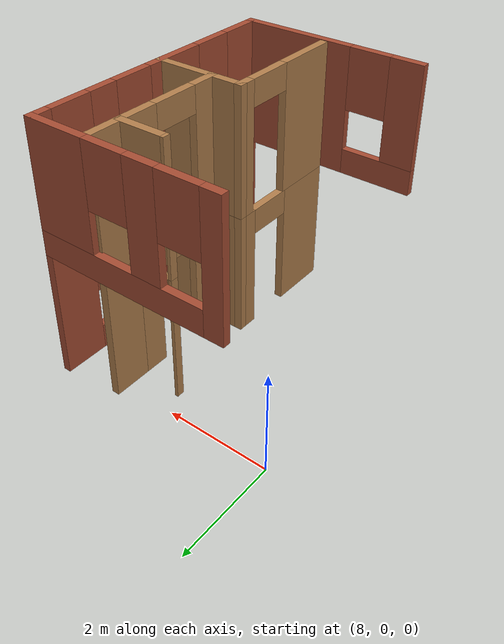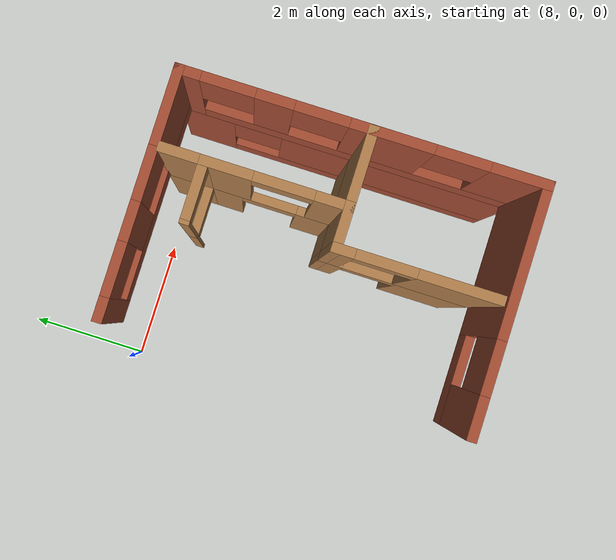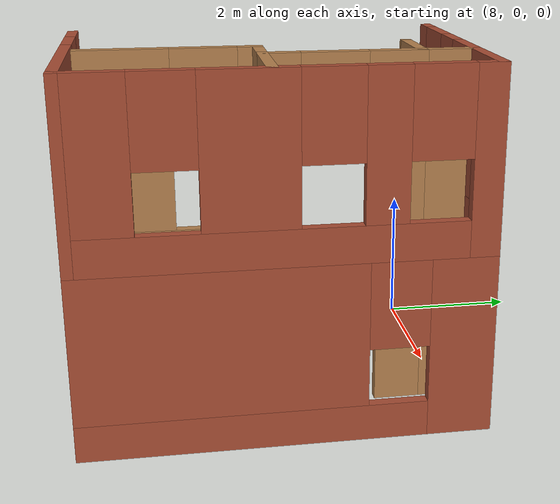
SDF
<sdf version="1.6">
 <model name="Building">
  <pose>-0.047811 -4.11763 0 0 -0 0</pose>
  <link name="Wall_27">
   <pose>12.2531 1.73144 0 0 -0 -1.5708</pose>
   <visual name="Wall_27_Visual_0">
    <pose>-2.30769 0 1.25 0 -0 0</pose>
    <geometry><box><size>0.884621 0.15 2.5</size></box></geometry>
    <material>
     <script><uri>file://media/materials/scripts/gazebo.material</uri><name>Gazebo/Bricks</name></script>
     <ambient>1 1 1 1</ambient>
    </material>
    <meta><layer>0</layer></meta>
   </visual>
   <collision name="Wall_27_Collision_0">
    <geometry><box><size>0.884621 0.15 2.5</size></box></geometry>
    <pose>-2.30769 0 1.25 0 -0 0</pose>
   </collision>
   <visual name="Wall_27_Visual_1">
    <pose>0.442311 0 0.25 0 -0 0</pose>
    <geometry><box><size>4.61538 0.15 0.5</size></box></geometry>
    <material>
     <script><uri>file://media/materials/scripts/gazebo.material</uri><name>Gazebo/Bricks</name></script>
     <ambient>1 1 1 1</ambient>
    </material>
    <meta><layer>0</layer></meta>
   </visual>
   <collision name="Wall_27_Collision_1">
    <geometry><box><size>4.61538 0.15 0.5</size></box></geometry>
    <pose>0.442311 0 0.25 0 -0 0</pose>
   </collision>
   <visual name="Wall_27_Visual_2">
    <pose>0.842311 0 1.5 0 -0 0</pose>
    <geometry><box><size>3.81538 0.15 2</size></box></geometry>
    <material>
     <script><uri>file://media/materials/scripts/gazebo.material</uri><name>Gazebo/Bricks</name></script>
     <ambient>1 1 1 1</ambient>
    </material>
    <meta><layer>0</layer></meta>
   </visual>
   <collision name="Wall_27_Collision_2">
    <geometry><box><size>3.81538 0.15 2</size></box></geometry>
    <pose>0.842311 0 1.5 0 -0 0</pose>
   </collision>
   <visual name="Wall_27_Visual_3">
    <pose>-1.46538 0 1.9 0 -0 0</pose>
    <geometry><box><size>0.8 0.15 1.2</size></box></geometry>
    <material>
     <script><uri>file://media/materials/scripts/gazebo.material</uri><name>Gazebo/Bricks</name></script>
     <ambient>1 1 1 1</ambient>
    </material>
    <meta><layer>0</layer></meta>
   </visual>
   <collision name="Wall_27_Collision_3">
    <geometry><box><size>0.8 0.15 1.2</size></box></geometry>
    <pose>-1.46538 0 1.9 0 -0 0</pose>
   </collision>
  </link>
  <link name="Wall_35">
   <pose>10.7203 3.68256 0 0 -0 0</pose>
   <visual name="Wall_35_Visual_0">
    <pose>-0.467759 0 1.25 0 -0 0</pose>
    <geometry><box><size>0.064482 0.15 2.5</size></box></geometry>
    <material>
     <script><uri>file://media/materials/scripts/gazebo.material</uri><name>Gazebo/Wood</name></script>
     <ambient>1 1 1 1</ambient>
    </material>
    <meta><layer>0</layer></meta>
   </visual>
   <collision name="Wall_35_Collision_0">
    <geometry><box><size>0.064482 0.15 2.5</size></box></geometry>
    <pose>-0.467759 0 1.25 0 -0 0</pose>
   </collision>
   <visual name="Wall_35_Visual_1">
    <pose>0.482241 0 1.25 0 -0 0</pose>
    <geometry><box><size>0.035518 0.15 2.5</size></box></geometry>
    <material>
     <script><uri>file://media/materials/scripts/gazebo.material</uri><name>Gazebo/Wood</name></script>
     <ambient>1 1 1 1</ambient>
    </material>
    <meta><layer>0</layer></meta>
   </visual>
   <collision name="Wall_35_Collision_1">
    <geometry><box><size>0.035518 0.15 2.5</size></box></geometry>
    <pose>0.482241 0 1.25 0 -0 0</pose>
   </collision>
   <visual name="Wall_35_Visual_2">
    <pose>0.014482 0 2.25 0 -0 0</pose>
    <geometry><box><size>0.9 0.15 0.5</size></box></geometry>
    <material>
     <script><uri>file://media/materials/scripts/gazebo.material</uri><name>Gazebo/Wood</name></script>
     <ambient>1 1 1 1</ambient>
    </material>
    <meta><layer>0</layer></meta>
   </visual>
   <collision name="Wall_35_Collision_2">
    <geometry><box><size>0.9 0.15 0.5</size></box></geometry>
    <pose>0.014482 0 2.25 0 -0 0</pose>
   </collision>
  </link>
  <link name="Wall_36">
   <collision name="Wall_36_Collision">
    <geometry><box><size>0.75 0.15 2.5</size></box></geometry>
    <pose>0 0 1.25 0 -0 0</pose>
   </collision>
   <visual name="Wall_36_Visual">
    <pose>0 0 1.25 0 -0 0</pose>
    <geometry><box><size>0.75 0.15 2.5</size></box></geometry>
    <material>
     <script><uri>file://media/materials/scripts/gazebo.material</uri><name>Gazebo/Wood</name></script>
     <ambient>1 1 1 1</ambient>
    </material>
    <meta><layer>0</layer></meta>
   </visual>
   <pose>11.1453 3.98257 0 0 -0 1.5708</pose>
  </link>
  <link name="Wall_38">
   <pose>11.1453 2.63257 0 0 -0 -1.5708</pose>
   <visual name="Wall_38_Visual_0">
    <pose>-0.803627 0 1.25 0 -0 0</pose>
    <geometry><box><size>0.642747 0.15 2.5</size></box></geometry>
    <material>
     <script><uri>file://media/materials/scripts/gazebo.material</uri><name>Gazebo/Wood</name></script>
     <ambient>1 1 1 1</ambient>
    </material>
    <meta><layer>0</layer></meta>
   </visual>
   <collision name="Wall_38_Collision_0">
    <geometry><box><size>0.642747 0.15 2.5</size></box></geometry>
    <pose>-0.803627 0 1.25 0 -0 0</pose>
   </collision>
   <visual name="Wall_38_Visual_1">
    <pose>0.771373 0 1.25 0 -0 0</pose>
    <geometry><box><size>0.707253 0.15 2.5</size></box></geometry>
    <material>
     <script><uri>file://media/materials/scripts/gazebo.material</uri><name>Gazebo/Wood</name></script>
     <ambient>1 1 1 1</ambient>
    </material>
    <meta><layer>0</layer></meta>
   </visual>
   <collision name="Wall_38_Collision_1">
    <geometry><box><size>0.707253 0.15 2.5</size></box></geometry>
    <pose>0.771373 0 1.25 0 -0 0</pose>
   </collision>
   <visual name="Wall_38_Visual_2">
    <pose>-0.032253 0 2.25 0 -0 0</pose>
    <geometry><box><size>0.9 0.15 0.5</size></box></geometry>
    <material>
     <script><uri>file://media/materials/scripts/gazebo.material</uri><name>Gazebo/Wood</name></script>
     <ambient>1 1 1 1</ambient>
    </material>
    <meta><layer>0</layer></meta>
   </visual>
   <collision name="Wall_38_Collision_2">
    <geometry><box><size>0.9 0.15 0.5</size></box></geometry>
    <pose>-0.032253 0 2.25 0 -0 0</pose>
   </collision>
  </link>
  <link name="Wall_39">
   <collision name="Wall_39_Collision">
    <geometry><box><size>1.25 0.15 2.5</size></box></geometry>
    <pose>0 0 1.25 0 -0 0</pose>
   </collision>
   <visual name="Wall_39_Visual">
    <pose>0 0 1.25 0 -0 0</pose>
    <geometry><box><size>1.25 0.15 2.5</size></box></geometry>
    <material>
     <script><uri>file://media/materials/scripts/gazebo.material</uri><name>Gazebo/Wood</name></script>
     <ambient>1 1 1 1</ambient>
    </material>
    <meta><layer>0</layer></meta>
   </visual>
   <pose>11.6953 1.58256 0 0 -0 0</pose>
  </link>
  <link name="Wall_41">
   <collision name="Wall_41_Collision">
    <geometry><box><size>0.75 0.15 2.5</size></box></geometry>
    <pose>0 0 1.25 0 -0 0</pose>
   </collision>
   <visual name="Wall_41_Visual">
    <pose>0 0 1.25 0 -0 0</pose>
    <geometry><box><size>0.75 0.15 2.5</size></box></geometry>
    <material>
     <script><uri>file://media/materials/scripts/gazebo.material</uri><name>Gazebo/Wood</name></script>
     <ambient>1 1 1 1</ambient>
    </material>
    <meta><layer>0</layer></meta>
   </visual>
   <pose>10.8453 1.58256 0 0 -0 3.14159</pose>
  </link>
  <link name="Wall_42">
   <pose>10.5453 0.407565 0 0 -0 -1.5708</pose>
   <visual name="Wall_42_Visual_0">
    <pose>-1.04184 0 1.25 0 -0 0</pose>
    <geometry><box><size>0.416326 0.15 2.5</size></box></geometry>
    <material>
     <script><uri>file://media/materials/scripts/gazebo.material</uri><name>Gazebo/Wood</name></script>
     <ambient>1 1 1 1</ambient>
    </material>
    <meta><layer>0</layer></meta>
   </visual>
   <collision name="Wall_42_Collision_0">
    <geometry><box><size>0.416326 0.15 2.5</size></box></geometry>
    <pose>-1.04184 0 1.25 0 -0 0</pose>
   </collision>
   <visual name="Wall_42_Visual_1">
    <pose>0.658163 0 1.25 0 -0 0</pose>
    <geometry><box><size>1.18367 0.15 2.5</size></box></geometry>
    <material>
     <script><uri>file://media/materials/scripts/gazebo.material</uri><name>Gazebo/Wood</name></script>
     <ambient>1 1 1 1</ambient>
    </material>
    <meta><layer>0</layer></meta>
   </visual>
   <collision name="Wall_42_Collision_1">
    <geometry><box><size>1.18367 0.15 2.5</size></box></geometry>
    <pose>0.658163 0 1.25 0 -0 0</pose>
   </collision>
   <visual name="Wall_42_Visual_2">
    <pose>-0.383674 0 2.25 0 -0 0</pose>
    <geometry><box><size>0.9 0.15 0.5</size></box></geometry>
    <material>
     <script><uri>file://media/materials/scripts/gazebo.material</uri><name>Gazebo/Wood</name></script>
     <ambient>1 1 1 1</ambient>
    </material>
    <meta><layer>0</layer></meta>
   </visual>
   <collision name="Wall_42_Collision_2">
    <geometry><box><size>0.9 0.15 0.5</size></box></geometry>
    <pose>-0.383674 0 2.25 0 -0 0</pose>
   </collision>
  </link>
  <link name="Wall_84">
   <pose>10.4531 4.40644 2.5 0 -0 0</pose>
   <visual name="Wall_84_Visual_0">
    <pose>-1.69054 0 1.25 0 -0 0</pose>
    <geometry><box><size>0.368918 0.15 2.5</size></box></geometry>
    <material>
     <script><uri>file://media/materials/scripts/gazebo.material</uri><name>Gazebo/Bricks</name></script>
     <ambient>1 1 1 1</ambient>
    </material>
    <meta><layer>1</layer></meta>
   </visual>
   <collision name="Wall_84_Collision_0">
    <geometry><box><size>0.368918 0.15 2.5</size></box></geometry>
    <pose>-1.69054 0 1.25 0 -0 0</pose>
   </collision>
   <visual name="Wall_84_Visual_1">
    <pose>0.184459 0 0.25 0 -0 0</pose>
    <geometry><box><size>3.38108 0.15 0.5</size></box></geometry>
    <material>
     <script><uri>file://media/materials/scripts/gazebo.material</uri><name>Gazebo/Bricks</name></script>
     <ambient>1 1 1 1</ambient>
    </material>
    <meta><layer>1</layer></meta>
   </visual>
   <collision name="Wall_84_Collision_1">
    <geometry><box><size>3.38108 0.15 0.5</size></box></geometry>
    <pose>0.184459 0 0.25 0 -0 0</pose>
   </collision>
   <visual name="Wall_84_Visual_2">
    <pose>-0.412164 0 1.5 0 -0 0</pose>
    <geometry><box><size>0.587836 0.15 2</size></box></geometry>
    <material>
     <script><uri>file://media/materials/scripts/gazebo.material</uri><name>Gazebo/Bricks</name></script>
     <ambient>1 1 1 1</ambient>
    </material>
    <meta><layer>1</layer></meta>
   </visual>
   <collision name="Wall_84_Collision_2">
    <geometry><box><size>0.587836 0.15 2</size></box></geometry>
    <pose>-0.412164 0 1.5 0 -0 0</pose>
   </collision>
   <visual name="Wall_84_Visual_3">
    <pose>1.27838 0 1.5 0 -0 0</pose>
    <geometry><box><size>1.19325 0.15 2</size></box></geometry>
    <material>
     <script><uri>file://media/materials/scripts/gazebo.material</uri><name>Gazebo/Bricks</name></script>
     <ambient>1 1 1 1</ambient>
    </material>
    <meta><layer>1</layer></meta>
   </visual>
   <collision name="Wall_84_Collision_3">
    <geometry><box><size>1.19325 0.15 2</size></box></geometry>
    <pose>1.27838 0 1.5 0 -0 0</pose>
   </collision>
   <visual name="Wall_84_Visual_4">
    <pose>-1.10608 0 1.9 0 -0 0</pose>
    <geometry><box><size>0.8 0.15 1.2</size></box></geometry>
    <material>
     <script><uri>file://media/materials/scripts/gazebo.material</uri><name>Gazebo/Bricks</name></script>
     <ambient>1 1 1 1</ambient>
    </material>
    <meta><layer>1</layer></meta>
   </visual>
   <collision name="Wall_84_Collision_4">
    <geometry><box><size>0.8 0.15 1.2</size></box></geometry>
    <pose>-1.10608 0 1.9 0 -0 0</pose>
   </collision>
   <visual name="Wall_84_Visual_5">
    <pose>0.281754 0 1.9 0 -0 0</pose>
    <geometry><box><size>0.8 0.15 1.2</size></box></geometry>
    <material>
     <script><uri>file://media/materials/scripts/gazebo.material</uri><name>Gazebo/Bricks</name></script>
     <ambient>1 1 1 1</ambient>
    </material>
    <meta><layer>1</layer></meta>
   </visual>
   <collision name="Wall_84_Collision_5">
    <geometry><box><size>0.8 0.15 1.2</size></box></geometry>
    <pose>0.281754 0 1.9 0 -0 0</pose>
   </collision>
  </link>
  <link name="Wall_85">
   <pose>12.2531 1.73144 2.5 0 -0 -1.5708</pose>
   <visual name="Wall_85_Visual_0">
    <pose>-2.55056 0 1.25 0 -0 0</pose>
    <geometry><box><size>0.398878 0.15 2.5</size></box></geometry>
    <material>
     <script><uri>file://media/materials/scripts/gazebo.material</uri><name>Gazebo/Bricks</name></script>
     <ambient>1 1 1 1</ambient>
    </material>
    <meta><layer>1</layer></meta>
   </visual>
   <collision name="Wall_85_Collision_0">
    <geometry><box><size>0.398878 0.15 2.5</size></box></geometry>
    <pose>-2.55056 0 1.25 0 -0 0</pose>
   </collision>
   <visual name="Wall_85_Visual_1">
    <pose>0.199439 0 0.25 0 -0 0</pose>
    <geometry><box><size>5.10112 0.15 0.5</size></box></geometry>
    <material>
     <script><uri>file://media/materials/scripts/gazebo.material</uri><name>Gazebo/Bricks</name></script>
     <ambient>1 1 1 1</ambient>
    </material>
    <meta><layer>1</layer></meta>
   </visual>
   <collision name="Wall_85_Collision_1">
    <geometry><box><size>5.10112 0.15 0.5</size></box></geometry>
    <pose>0.199439 0 0.25 0 -0 0</pose>
   </collision>
   <visual name="Wall_85_Visual_2">
    <pose>-1.26877 0 1.5 0 -0 0</pose>
    <geometry><box><size>0.564706 0.15 2</size></box></geometry>
    <material>
     <script><uri>file://media/materials/scripts/gazebo.material</uri><name>Gazebo/Bricks</name></script>
     <ambient>1 1 1 1</ambient>
    </material>
    <meta><layer>1</layer></meta>
   </visual>
   <collision name="Wall_85_Collision_2">
    <geometry><box><size>0.564706 0.15 2</size></box></geometry>
    <pose>-1.26877 0 1.5 0 -0 0</pose>
   </collision>
   <visual name="Wall_85_Visual_3">
    <pose>0.431331 0 1.5 0 -0 0</pose>
    <geometry><box><size>1.23549 0.15 2</size></box></geometry>
    <material>
     <script><uri>file://media/materials/scripts/gazebo.material</uri><name>Gazebo/Bricks</name></script>
     <ambient>1 1 1 1</ambient>
    </material>
    <meta><layer>1</layer></meta>
   </visual>
   <collision name="Wall_85_Collision_3">
    <geometry><box><size>1.23549 0.15 2</size></box></geometry>
    <pose>0.431331 0 1.5 0 -0 0</pose>
   </collision>
   <visual name="Wall_85_Visual_4">
    <pose>2.29954 0 1.5 0 -0 0</pose>
    <geometry><box><size>0.900922 0.15 2</size></box></geometry>
    <material>
     <script><uri>file://media/materials/scripts/gazebo.material</uri><name>Gazebo/Bricks</name></script>
     <ambient>1 1 1 1</ambient>
    </material>
    <meta><layer>1</layer></meta>
   </visual>
   <collision name="Wall_85_Collision_4">
    <geometry><box><size>0.900922 0.15 2</size></box></geometry>
    <pose>2.29954 0 1.5 0 -0 0</pose>
   </collision>
   <visual name="Wall_85_Visual_5">
    <pose>-1.95112 0 1.9 0 -0 0</pose>
    <geometry><box><size>0.8 0.15 1.2</size></box></geometry>
    <material>
     <script><uri>file://media/materials/scripts/gazebo.material</uri><name>Gazebo/Bricks</name></script>
     <ambient>1 1 1 1</ambient>
    </material>
    <meta><layer>1</layer></meta>
   </visual>
   <collision name="Wall_85_Collision_5">
    <geometry><box><size>0.8 0.15 1.2</size></box></geometry>
    <pose>-1.95112 0 1.9 0 -0 0</pose>
   </collision>
   <visual name="Wall_85_Visual_6">
    <pose>-0.586416 0 1.9 0 -0 0</pose>
    <geometry><box><size>0.8 0.15 1.2</size></box></geometry>
    <material>
     <script><uri>file://media/materials/scripts/gazebo.material</uri><name>Gazebo/Bricks</name></script>
     <ambient>1 1 1 1</ambient>
    </material>
    <meta><layer>1</layer></meta>
   </visual>
   <collision name="Wall_85_Collision_6">
    <geometry><box><size>0.8 0.15 1.2</size></box></geometry>
    <pose>-0.586416 0 1.9 0 -0 0</pose>
   </collision>
   <visual name="Wall_85_Visual_7">
    <pose>1.44908 0 1.9 0 -0 0</pose>
    <geometry><box><size>0.8 0.15 1.2</size></box></geometry>
    <material>
     <script><uri>file://media/materials/scripts/gazebo.material</uri><name>Gazebo/Bricks</name></script>
     <ambient>1 1 1 1</ambient>
    </material>
    <meta><layer>1</layer></meta>
   </visual>
   <collision name="Wall_85_Collision_7">
    <geometry><box><size>0.8 0.15 1.2</size></box></geometry>
    <pose>1.44908 0 1.9 0 -0 0</pose>
   </collision>
  </link>
  <link name="Wall_86">
   <pose>10.4531 -0.943557 2.5 0 -0 3.14159</pose>
   <visual name="Wall_86_Visual_0">
    <pose>-0.723242 0 1.25 0 -0 0</pose>
    <geometry><box><size>2.30351 0.15 2.5</size></box></geometry>
    <material>
     <script><uri>file://media/materials/scripts/gazebo.material</uri><name>Gazebo/Bricks</name></script>
     <ambient>1 1 1 1</ambient>
    </material>
    <meta><layer>1</layer></meta>
   </visual>
   <collision name="Wall_86_Collision_0">
    <geometry><box><size>2.30351 0.15 2.5</size></box></geometry>
    <pose>-0.723242 0 1.25 0 -0 0</pose>
   </collision>
   <visual name="Wall_86_Visual_1">
    <pose>1.15176 0 0.25 0 -0 0</pose>
    <geometry><box><size>1.44649 0.15 0.5</size></box></geometry>
    <material>
     <script><uri>file://media/materials/scripts/gazebo.material</uri><name>Gazebo/Bricks</name></script>
     <ambient>1 1 1 1</ambient>
    </material>
    <meta><layer>1</layer></meta>
   </visual>
   <collision name="Wall_86_Collision_1">
    <geometry><box><size>1.44649 0.15 0.5</size></box></geometry>
    <pose>1.15176 0 0.25 0 -0 0</pose>
   </collision>
   <visual name="Wall_86_Visual_2">
    <pose>1.55176 0 1.5 0 -0 0</pose>
    <geometry><box><size>0.646485 0.15 2</size></box></geometry>
    <material>
     <script><uri>file://media/materials/scripts/gazebo.material</uri><name>Gazebo/Bricks</name></script>
     <ambient>1 1 1 1</ambient>
    </material>
    <meta><layer>1</layer></meta>
   </visual>
   <collision name="Wall_86_Collision_2">
    <geometry><box><size>0.646485 0.15 2</size></box></geometry>
    <pose>1.55176 0 1.5 0 -0 0</pose>
   </collision>
   <visual name="Wall_86_Visual_3">
    <pose>0.828515 0 1.9 0 -0 0</pose>
    <geometry><box><size>0.8 0.15 1.2</size></box></geometry>
    <material>
     <script><uri>file://media/materials/scripts/gazebo.material</uri><name>Gazebo/Bricks</name></script>
     <ambient>1 1 1 1</ambient>
    </material>
    <meta><layer>1</layer></meta>
   </visual>
   <collision name="Wall_86_Collision_3">
    <geometry><box><size>0.8 0.15 1.2</size></box></geometry>
    <pose>0.828515 0 1.9 0 -0 0</pose>
   </collision>
  </link>
  <link name="Wall_89">
   <pose>10.7203 3.68256 2.5 0 -0 0</pose>
   <visual name="Wall_89_Visual_0">
    <pose>-0.467759 0 1.25 0 -0 0</pose>
    <geometry><box><size>0.064482 0.15 2.5</size></box></geometry>
    <material>
     <script><uri>file://media/materials/scripts/gazebo.material</uri><name>Gazebo/Wood</name></script>
     <ambient>1 1 1 1</ambient>
    </material>
    <meta><layer>1</layer></meta>
   </visual>
   <collision name="Wall_89_Collision_0">
    <geometry><box><size>0.064482 0.15 2.5</size></box></geometry>
    <pose>-0.467759 0 1.25 0 -0 0</pose>
   </collision>
   <visual name="Wall_89_Visual_1">
    <pose>0.482241 0 1.25 0 -0 0</pose>
    <geometry><box><size>0.035518 0.15 2.5</size></box></geometry>
    <material>
     <script><uri>file://media/materials/scripts/gazebo.material</uri><name>Gazebo/Wood</name></script>
     <ambient>1 1 1 1</ambient>
    </material>
    <meta><layer>1</layer></meta>
   </visual>
   <collision name="Wall_89_Collision_1">
    <geometry><box><size>0.035518 0.15 2.5</size></box></geometry>
    <pose>0.482241 0 1.25 0 -0 0</pose>
   </collision>
   <visual name="Wall_89_Visual_2">
    <pose>0.014482 0 2.25 0 -0 0</pose>
    <geometry><box><size>0.9 0.15 0.5</size></box></geometry>
    <material>
     <script><uri>file://media/materials/scripts/gazebo.material</uri><name>Gazebo/Wood</name></script>
     <ambient>1 1 1 1</ambient>
    </material>
    <meta><layer>1</layer></meta>
   </visual>
   <collision name="Wall_89_Collision_2">
    <geometry><box><size>0.9 0.15 0.5</size></box></geometry>
    <pose>0.014482 0 2.25 0 -0 0</pose>
   </collision>
  </link>
  <link name="Wall_90">
   <collision name="Wall_90_Collision">
    <geometry><box><size>0.75 0.15 2.5</size></box></geometry>
    <pose>0 0 1.25 0 -0 0</pose>
   </collision>
   <visual name="Wall_90_Visual">
    <pose>0 0 1.25 0 -0 0</pose>
    <geometry><box><size>0.75 0.15 2.5</size></box></geometry>
    <material>
     <script><uri>file://media/materials/scripts/gazebo.material</uri><name>Gazebo/Wood</name></script>
     <ambient>1 1 1 1</ambient>
    </material>
    <meta><layer>1</layer></meta>
   </visual>
   <pose>11.1453 3.98257 2.5 0 -0 1.5708</pose>
  </link>
  <link name="Wall_91">
   <pose>11.1453 2.63257 2.5 0 -0 -1.5708</pose>
   <visual name="Wall_91_Visual_0">
    <pose>-0.734235 0 1.25 0 -0 0</pose>
    <geometry><box><size>0.78153 0.15 2.5</size></box></geometry>
    <material>
     <script><uri>file://media/materials/scripts/gazebo.material</uri><name>Gazebo/Wood</name></script>
     <ambient>1 1 1 1</ambient>
    </material>
    <meta><layer>1</layer></meta>
   </visual>
   <collision name="Wall_91_Collision_0">
    <geometry><box><size>0.78153 0.15 2.5</size></box></geometry>
    <pose>-0.734235 0 1.25 0 -0 0</pose>
   </collision>
   <visual name="Wall_91_Visual_1">
    <pose>0.840765 0 1.25 0 -0 0</pose>
    <geometry><box><size>0.56847 0.15 2.5</size></box></geometry>
    <material>
     <script><uri>file://media/materials/scripts/gazebo.material</uri><name>Gazebo/Wood</name></script>
     <ambient>1 1 1 1</ambient>
    </material>
    <meta><layer>1</layer></meta>
   </visual>
   <collision name="Wall_91_Collision_1">
    <geometry><box><size>0.56847 0.15 2.5</size></box></geometry>
    <pose>0.840765 0 1.25 0 -0 0</pose>
   </collision>
   <visual name="Wall_91_Visual_2">
    <pose>0.10653 0 2.25 0 -0 0</pose>
    <geometry><box><size>0.9 0.15 0.5</size></box></geometry>
    <material>
     <script><uri>file://media/materials/scripts/gazebo.material</uri><name>Gazebo/Wood</name></script>
     <ambient>1 1 1 1</ambient>
    </material>
    <meta><layer>1</layer></meta>
   </visual>
   <collision name="Wall_91_Collision_2">
    <geometry><box><size>0.9 0.15 0.5</size></box></geometry>
    <pose>0.10653 0 2.25 0 -0 0</pose>
   </collision>
  </link>
  <link name="Wall_92">
   <collision name="Wall_92_Collision">
    <geometry><box><size>1.25 0.15 2.5</size></box></geometry>
    <pose>0 0 1.25 0 -0 0</pose>
   </collision>
   <visual name="Wall_92_Visual">
    <pose>0 0 1.25 0 -0 0</pose>
    <geometry><box><size>1.25 0.15 2.5</size></box></geometry>
    <material>
     <script><uri>file://media/materials/scripts/gazebo.material</uri><name>Gazebo/Wood</name></script>
     <ambient>1 1 1 1</ambient>
    </material>
    <meta><layer>1</layer></meta>
   </visual>
   <pose>11.6953 1.58256 2.5 0 -0 0</pose>
  </link>
  <link name="Wall_93">
   <collision name="Wall_93_Collision">
    <geometry><box><size>0.75 0.15 2.5</size></box></geometry>
    <pose>0 0 1.25 0 -0 0</pose>
   </collision>
   <visual name="Wall_93_Visual">
    <pose>0 0 1.25 0 -0 0</pose>
    <geometry><box><size>0.75 0.15 2.5</size></box></geometry>
    <material>
     <script><uri>file://media/materials/scripts/gazebo.material</uri><name>Gazebo/Wood</name></script>
     <ambient>1 1 1 1</ambient>
    </material>
    <meta><layer>1</layer></meta>
   </visual>
   <pose>10.8453 1.58256 2.5 0 -0 3.14159</pose>
  </link>
  <link name="Wall_94">
   <pose>10.5453 0.407565 2.5 0 -0 -1.5708</pose>
   <visual name="Wall_94_Visual_0">
    <pose>-1.07653 0 1.25 0 -0 0</pose>
    <geometry><box><size>0.346934 0.15 2.5</size></box></geometry>
    <material>
     <script><uri>file://media/materials/scripts/gazebo.material</uri><name>Gazebo/Wood</name></script>
     <ambient>1 1 1 1</ambient>
    </material>
    <meta><layer>1</layer></meta>
   </visual>
   <collision name="Wall_94_Collision_0">
    <geometry><box><size>0.346934 0.15 2.5</size></box></geometry>
    <pose>-1.07653 0 1.25 0 -0 0</pose>
   </collision>
   <visual name="Wall_94_Visual_1">
    <pose>0.623467 0 1.25 0 -0 0</pose>
    <geometry><box><size>1.25307 0.15 2.5</size></box></geometry>
    <material>
     <script><uri>file://media/materials/scripts/gazebo.material</uri><name>Gazebo/Wood</name></script>
     <ambient>1 1 1 1</ambient>
    </material>
    <meta><layer>1</layer></meta>
   </visual>
   <collision name="Wall_94_Collision_1">
    <geometry><box><size>1.25307 0.15 2.5</size></box></geometry>
    <pose>0.623467 0 1.25 0 -0 0</pose>
   </collision>
   <visual name="Wall_94_Visual_2">
    <pose>-0.453066 0 2.25 0 -0 0</pose>
    <geometry><box><size>0.9 0.15 0.5</size></box></geometry>
    <material>
     <script><uri>file://media/materials/scripts/gazebo.material</uri><name>Gazebo/Wood</name></script>
     <ambient>1 1 1 1</ambient>
    </material>
    <meta><layer>1</layer></meta>
   </visual>
   <collision name="Wall_94_Collision_2">
    <geometry><box><size>0.9 0.15 0.5</size></box></geometry>
    <pose>-0.453066 0 2.25 0 -0 0</pose>
   </collision>
  </link>
  <static>1</static>
 </model>
</sdf>
